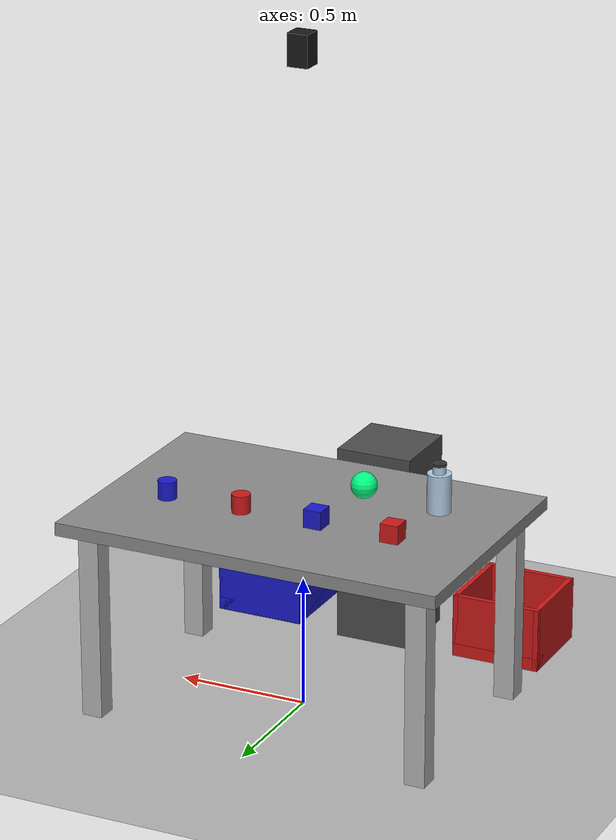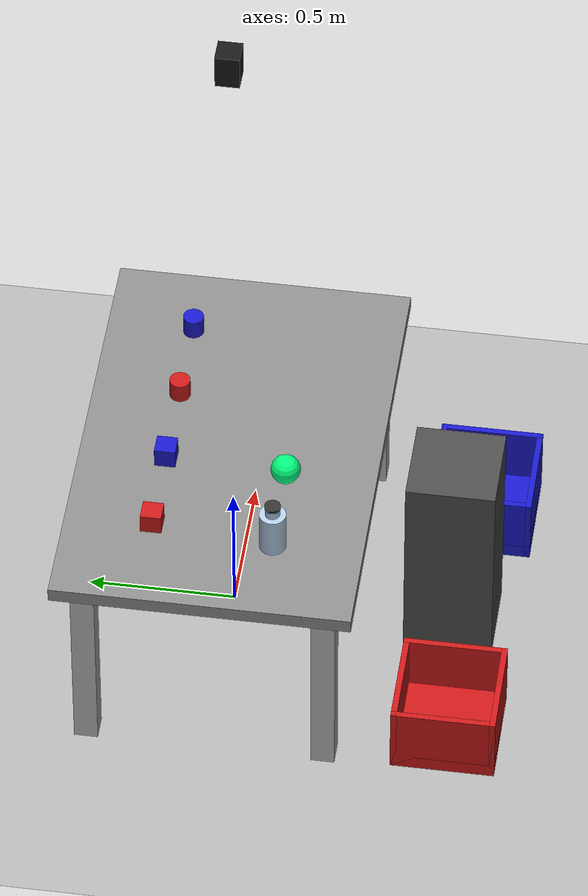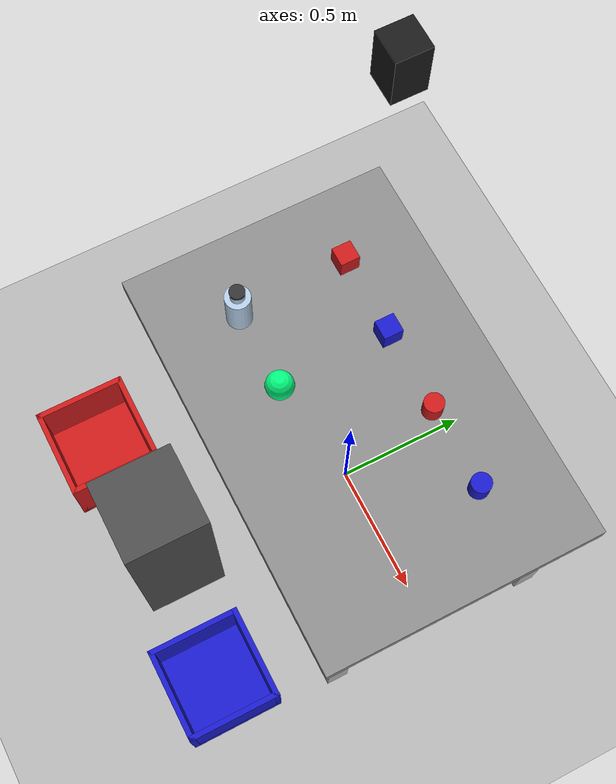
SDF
<?xml version="1.0" ?>
<sdf version="1.10">

  <world name="sorting_world">

    <!-- Physics -->
    <physics name="1ms" type="ignored">
      <max_step_size>0.001</max_step_size>
      <real_time_factor>1.0</real_time_factor>
    </physics>

    <!-- Gazebo system plugins -->
    <plugin
      filename="gz-sim-physics-system"
      name="gz::sim::systems::Physics">
    </plugin>

    <plugin
      filename="gz-sim-user-commands-system"
      name="gz::sim::systems::UserCommands">
    </plugin>

    <plugin
      filename="gz-sim-scene-broadcaster-system"
      name="gz::sim::systems::SceneBroadcaster">
    </plugin>

    <plugin
      filename="gz-sim-contact-system"
      name="gz::sim::systems::Contact">
    </plugin>

    <plugin
        filename="gz-sim-sensors-system"
        name="gz::sim::systems::Sensors">
        <render_engine>ogre2</render_engine>
    </plugin>

    <!-- Lighting -->
    <light type="directional" name="sun">
      <cast_shadows>true</cast_shadows>

      <pose>0 0 10 0 0 0</pose>

      <diffuse>0.8 0.8 0.8 1</diffuse>
      <specular>0.2 0.2 0.2 1</specular>

      <direction>-0.5 0.1 -0.9</direction>
    </light>

    <!-- Ground -->
    <model name="ground_plane">

      <static>true</static>

      <link name="ground_link">

        <collision name="ground_collision">
          <geometry>
            <plane>
              <normal>0 0 1</normal>
              <size>10 10</size>
            </plane>
          </geometry>
        </collision>

        <visual name="ground_visual">
          <geometry>
            <plane>
              <normal>0 0 1</normal>
              <size>10 10</size>
            </plane>
          </geometry>

          <material>
            <ambient>0.7 0.7 0.7 1</ambient>
            <diffuse>0.7 0.7 0.7 1</diffuse>
          </material>
        </visual>

      </link>
    </model>

    <!-- Sorting table -->
    <model name="sorting_table">

        <!-- Center of the table -->
        <pose>0 0 0 0 0 0</pose>

        <static>true</static>

        <link name="table_link">

            <!-- Table top -->
            <collision name="tabletop_collision">
            <pose>0 0 0.75 0 0 0</pose>
            <geometry>
                <box>
                <size>1.5 1.0 0.05</size>
                </box>
            </geometry>
            </collision>

            <visual name="tabletop_visual">
            <pose>0 0 0.75 0 0 0</pose>
            <geometry>
                <box>
                <size>1.5 1.0 0.05</size>
                </box>
            </geometry>

            <material>
                <ambient>0.55 0.55 0.55 1</ambient>
                <diffuse>0.55 0.55 0.55 1</diffuse>
            </material>
            </visual>

            <!-- Four legs -->
            <collision name="leg1_collision">
            <pose>0.65 0.40 0.375 0 0 0</pose>
            <geometry>
                <box>
                <size>0.08 0.08 0.75</size>
                </box>
            </geometry>
            </collision>

            <visual name="leg1_visual">
            <pose>0.65 0.40 0.375 0 0 0</pose>
            <geometry>
                <box>
                <size>0.08 0.08 0.75</size>
                </box>
            </geometry>
            </visual>

            <collision name="leg2_collision">
            <pose>0.65 -0.40 0.375 0 0 0</pose>
            <geometry>
                <box>
                <size>0.08 0.08 0.75</size>
                </box>
            </geometry>
            </collision>

            <visual name="leg2_visual">
            <pose>0.65 -0.40 0.375 0 0 0</pose>
            <geometry>
                <box>
                <size>0.08 0.08 0.75</size>
                </box>
            </geometry>
            </visual>

            <collision name="leg3_collision">
            <pose>-0.65 0.40 0.375 0 0 0</pose>
            <geometry>
                <box>
                <size>0.08 0.08 0.75</size>
                </box>
            </geometry>
            </collision>

            <visual name="leg3_visual">
            <pose>-0.65 0.40 0.375 0 0 0</pose>
            <geometry>
                <box>
                <size>0.08 0.08 0.75</size>
                </box>
            </geometry>
            </visual>

            <collision name="leg4_collision">
            <pose>-0.65 -0.40 0.375 0 0 0</pose>
            <geometry>
                <box>
                <size>0.08 0.08 0.75</size>
                </box>
            </geometry>
            </collision>

            <visual name="leg4_visual">
            <pose>-0.65 -0.40 0.375 0 0 0</pose>
            <geometry>
                <box>
                <size>0.08 0.08 0.75</size>
                </box>
            </geometry>
            </visual>

        </link>
    </model>

    <!-- Robot pedestal: UR10e base sits on top, between the bins and the table.
         Keep in sync with mount_* in urdf/sorting_cell.urdf.xacro. -->
    <model name="robot_pedestal">
        <static>true</static>
        <pose>0 -0.75 0.3875 0 0 0</pose>
        <link name="pedestal_link">
            <collision name="pedestal_collision">
            <geometry>
                <box>
                <size>0.3 0.3 0.775</size>
                </box>
            </geometry>
            </collision>
            <visual name="pedestal_visual">
            <geometry>
                <box>
                <size>0.3 0.3 0.775</size>
                </box>
            </geometry>
            <material>
                <ambient>0.3 0.3 0.3 1</ambient>
                <diffuse>0.3 0.3 0.3 1</diffuse>
            </material>
            </visual>
        </link>
    </model>

    <!-- Red sorting bin -->
    <include>
        <uri>model://red_bin</uri>
        <name>red_bin</name>
        <pose>-0.5 -0.8 0 0 0 0</pose>
    </include>

    <!-- Blue sorting bin -->
    <include>
        <uri>model://blue_bin</uri>
        <name>blue_bin</name>
        <pose>0.5 -0.8 0 0 0 0</pose>
    </include>

    <!-- Sorting objects -->
    <include>
        <uri>model://red_cube</uri>
        <name>red_cube_1</name>
        <pose>-0.45 0.20 0.85 0 0 0</pose>
    </include>

    <include>
        <uri>model://blue_cube</uri>
        <name>blue_cube_1</name>
        <pose>-0.15 0.20 0.85 0 0 0</pose>
    </include>

    <include>
        <uri>model://red_cylinder</uri>
        <name>red_cylinder_1</name>
        <pose>0.15 0.20 0.85 0 0 0</pose>
    </include>

    <include>
        <uri>model://blue_cylinder</uri>
        <name>blue_cylinder_1</name>
        <pose>0.45 0.20 0.85 0 0 0</pose>
    </include>

    <!-- Obstacles -->
    <include>
        <uri>model://obstacle_bottle</uri>
        <name>obstacle_bottle_1</name>
        <pose>-0.45 -0.20 0.775 0 0 0</pose>
    </include>

    <include>
        <uri>model://obstacle_ball</uri>
        <name>obstacle_ball_1</name>
        <pose>-0.15 -0.20 0.775 0 0 0</pose>
    </include>

    <!-- Fixed overhead RGB camera -->
    <model name="sorting_camera">

        <static>true</static>

        <!--
            Camera position:
            x = 0
            y = 0
            z = 2.5 m
            Pitch = +90 degrees so the camera looks downward.
        -->
        <pose>0 0 2.5 0 1.5708 1.5708</pose>

        <link name="camera_link">

            <!-- Small visual body so we can see where the camera is -->
            <visual name="camera_body">
            <geometry>
                <box>
                <size>0.12 0.08 0.08</size>
                </box>
            </geometry>

            <material>
                <ambient>0.1 0.1 0.1 1</ambient>
                <diffuse>0.1 0.1 0.1 1</diffuse>
            </material>
            </visual>

            <!-- Actual RGB camera sensor -->
            <sensor name="rgb_camera" type="camera">

                <always_on>true</always_on>
                <update_rate>30</update_rate>

                <topic>/sorting_camera/image</topic>

                <camera>

                    <horizontal_fov>1.047</horizontal_fov>

                    <image>
                        <width>640</width>
                        <height>480</height>
                        <format>R8G8B8</format>
                    </image>

                    <clip>
                        <near>0.1</near>
                        <far>100</far>
                    </clip>

                </camera>

            </sensor>

        </link>

    </model>

  </world>

</sdf>

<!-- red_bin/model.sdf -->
<sdf version="1.10">

  <model name="red_bin">

    <static>true</static>

    <link name="bin_link">

      <!-- Bottom -->
      <collision name="bottom_collision">
        <pose>0 0 0.025 0 0 0</pose>
        <geometry>
          <box>
            <size>0.35 0.35 0.05</size>
          </box>
        </geometry>
      </collision>

      <visual name="bottom_visual">
        <pose>0 0 0.025 0 0 0</pose>
        <geometry>
          <box>
            <size>0.35 0.35 0.05</size>
          </box>
        </geometry>

        <material>
          <ambient>0.8 0.1 0.1 1</ambient>
          <diffuse>0.8 0.1 0.1 1</diffuse>
        </material>
      </visual>

      <!-- Left wall -->
      <collision name="left_wall_collision">
        <pose>0 0.165 0.125 0 0 0</pose>
        <geometry>
          <box>
            <size>0.35 0.02 0.25</size>
          </box>
        </geometry>
      </collision>

      <visual name="left_wall_visual">
        <pose>0 0.165 0.125 0 0 0</pose>
        <geometry>
          <box>
            <size>0.35 0.02 0.25</size>
          </box>
        </geometry>

        <material>
          <ambient>0.8 0.1 0.1 1</ambient>
          <diffuse>0.8 0.1 0.1 1</diffuse>
        </material>
      </visual>

      <!-- Right wall -->
      <collision name="right_wall_collision">
        <pose>0 -0.165 0.125 0 0 0</pose>
        <geometry>
          <box>
            <size>0.35 0.02 0.25</size>
          </box>
        </geometry>
      </collision>

      <visual name="right_wall_visual">
        <pose>0 -0.165 0.125 0 0 0</pose>
        <geometry>
          <box>
            <size>0.35 0.02 0.25</size>
          </box>
        </geometry>

        <material>
          <ambient>0.8 0.1 0.1 1</ambient>
          <diffuse>0.8 0.1 0.1 1</diffuse>
        </material>
      </visual>

      <!-- Front wall -->
      <collision name="front_wall_collision">
        <pose>0.165 0 0.125 0 0 0</pose>
        <geometry>
          <box>
            <size>0.02 0.35 0.25</size>
          </box>
        </geometry>
      </collision>

      <visual name="front_wall_visual">
        <pose>0.165 0 0.125 0 0 0</pose>
        <geometry>
          <box>
            <size>0.02 0.35 0.25</size>
          </box>
        </geometry>

        <material>
          <ambient>0.8 0.1 0.1 1</ambient>
          <diffuse>0.8 0.1 0.1 1</diffuse>
        </material>
      </visual>

      <!-- Back wall -->
      <collision name="back_wall_collision">
        <pose>-0.165 0 0.125 0 0 0</pose>
        <geometry>
          <box>
            <size>0.02 0.35 0.25</size>
          </box>
        </geometry>
      </collision>

      <visual name="back_wall_visual">
        <pose>-0.165 0 0.125 0 0 0</pose>
        <geometry>
          <box>
            <size>0.02 0.35 0.25</size>
          </box>
        </geometry>

        <material>
          <ambient>0.8 0.1 0.1 1</ambient>
          <diffuse>0.8 0.1 0.1 1</diffuse>
        </material>
      </visual>

    </link>

  </model>

</sdf>

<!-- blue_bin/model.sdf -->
<sdf version="1.10">

  <model name="blue_bin">

    <static>true</static>

    <link name="bin_link">

      <!-- Bottom -->
      <collision name="bottom_collision">
        <pose>0 0 0.025 0 0 0</pose>
        <geometry>
          <box>
            <size>0.35 0.35 0.05</size>
          </box>
        </geometry>
      </collision>

      <visual name="bottom_visual">
        <pose>0 0 0.025 0 0 0</pose>
        <geometry>
          <box>
            <size>0.35 0.35 0.05</size>
          </box>
        </geometry>

        <material>
          <ambient>0.1 0.1 0.8 1</ambient>
          <diffuse>0.1 0.1 0.8 1</diffuse>
        </material>
      </visual>

      <!-- Left wall -->
      <collision name="left_wall_collision">
        <pose>0 0.165 0.125 0 0 0</pose>
        <geometry>
          <box>
            <size>0.35 0.02 0.25</size>
          </box>
        </geometry>
      </collision>

      <visual name="left_wall_visual">
        <pose>0 0.165 0.125 0 0 0</pose>
        <geometry>
          <box>
            <size>0.35 0.02 0.25</size>
          </box>
        </geometry>

        <material>
          <ambient>0.1 0.1 0.8 1</ambient>
          <diffuse>0.1 0.1 0.8 1</diffuse>
        </material>
      </visual>

      <!-- Right wall -->
      <collision name="right_wall_collision">
        <pose>0 -0.165 0.125 0 0 0</pose>
        <geometry>
          <box>
            <size>0.35 0.02 0.25</size>
          </box>
        </geometry>
      </collision>

      <visual name="right_wall_visual">
        <pose>0 -0.165 0.125 0 0 0</pose>
        <geometry>
          <box>
            <size>0.35 0.02 0.25</size>
          </box>
        </geometry>

        <material>
          <ambient>0.1 0.1 0.8 1</ambient>
          <diffuse>0.1 0.1 0.8 1</diffuse>
        </material>
      </visual>

      <!-- Front wall -->
      <collision name="front_wall_collision">
        <pose>0.165 0 0.125 0 0 0</pose>
        <geometry>
          <box>
            <size>0.02 0.35 0.25</size>
          </box>
        </geometry>
      </collision>

      <visual name="front_wall_visual">
        <pose>0.165 0 0.125 0 0 0</pose>
        <geometry>
          <box>
            <size>0.02 0.35 0.25</size>
          </box>
        </geometry>

        <material>
          <ambient>0.1 0.1 0.8 1</ambient>
          <diffuse>0.1 0.1 0.8 1</diffuse>
        </material>
      </visual>

      <!-- Back wall -->
      <collision name="back_wall_collision">
        <pose>-0.165 0 0.125 0 0 0</pose>
        <geometry>
          <box>
            <size>0.02 0.35 0.25</size>
          </box>
        </geometry>
      </collision>

      <visual name="back_wall_visual">
        <pose>-0.165 0 0.125 0 0 0</pose>
        <geometry>
          <box>
            <size>0.02 0.35 0.25</size>
          </box>
        </geometry>

        <material>
          <ambient>0.1 0.1 0.8 1</ambient>
          <diffuse>0.1 0.1 0.8 1</diffuse>
        </material>
      </visual>

    </link>

  </model>

</sdf>

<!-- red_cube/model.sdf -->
<sdf version="1.10">

  <model name="red_cube">

    <link name="cube_link">

      <!-- Physical properties. 0.07 m wide to fit the AG-95's 95 mm max opening. -->
      <inertial>
        <mass>0.1</mass>
        <inertia>
          <ixx>0.0000817</ixx>
          <iyy>0.0000817</iyy>
          <izz>0.0000817</izz>
        </inertia>
      </inertial>

      <!-- Collision geometry -->
      <collision name="cube_collision">
        <geometry>
          <box>
            <size>0.07 0.07 0.07</size>
          </box>
        </geometry>
      </collision>

      <!-- Visible geometry -->
      <visual name="cube_visual">
        <geometry>
          <box>
            <size>0.07 0.07 0.07</size>
          </box>
        </geometry>

        <material>
          <ambient>0.8 0.1 0.1 1</ambient>
          <diffuse>0.8 0.1 0.1 1</diffuse>
        </material>
      </visual>

    </link>

  </model>

</sdf>

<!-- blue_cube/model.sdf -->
<sdf version="1.10">

  <model name="blue_cube">

    <link name="cube_link">

      <!-- Physical properties. 0.07 m wide to fit the AG-95's 95 mm max opening. -->
      <inertial>
        <mass>0.1</mass>
        <inertia>
          <ixx>0.0000817</ixx>
          <iyy>0.0000817</iyy>
          <izz>0.0000817</izz>
        </inertia>
      </inertial>

      <!-- Collision geometry -->
      <collision name="cube_collision">
        <geometry>
          <box>
            <size>0.07 0.07 0.07</size>
          </box>
        </geometry>
      </collision>

      <!-- Visible geometry -->
      <visual name="cube_visual">
        <geometry>
          <box>
            <size>0.07 0.07 0.07</size>
          </box>
        </geometry>

        <material>
          <ambient>0.1 0.1 0.8 1</ambient>
          <diffuse>0.1 0.1 0.8 1</diffuse>
        </material>
      </visual>

    </link>

  </model>

</sdf>

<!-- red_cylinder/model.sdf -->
<sdf version="1.10">

  <model name="red_cylinder">

    <link name="cylinder_link">

      <!-- Physical properties. 0.07 m diameter to fit the AG-95's 95 mm max opening. -->
      <inertial>
        <mass>0.1</mass>
        <inertia>
          <ixx>0.000114</ixx>
          <iyy>0.000114</iyy>
          <izz>0.0000613</izz>
        </inertia>
      </inertial>

      <!-- Collision geometry -->
      <collision name="cylinder_collision">
        <geometry>
          <cylinder>
            <radius>0.035</radius>
            <length>0.07</length>
          </cylinder>
        </geometry>
      </collision>

      <!-- Visible geometry -->
      <visual name="cylinder_visual">
        <geometry>
          <cylinder>
            <radius>0.035</radius>
            <length>0.07</length>
          </cylinder>
        </geometry>

        <material>
          <ambient>0.8 0.1 0.1 1</ambient>
          <diffuse>0.8 0.1 0.1 1</diffuse>
        </material>
      </visual>

    </link>

  </model>

</sdf>

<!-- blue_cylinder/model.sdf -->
<sdf version="1.10">

  <model name="blue_cylinder">

    <link name="cylinder_link">

      <!-- Physical properties. 0.07 m diameter to fit the AG-95's 95 mm max opening. -->
      <inertial>
        <mass>0.1</mass>
        <inertia>
          <ixx>0.000114</ixx>
          <iyy>0.000114</iyy>
          <izz>0.0000613</izz>
        </inertia>
      </inertial>

      <!-- Collision geometry -->
      <collision name="cylinder_collision">
        <geometry>
          <cylinder>
            <radius>0.035</radius>
            <length>0.07</length>
          </cylinder>
        </geometry>
      </collision>

      <!-- Visible geometry -->
      <visual name="cylinder_visual">
        <geometry>
          <cylinder>
            <radius>0.035</radius>
            <length>0.07</length>
          </cylinder>
        </geometry>

        <material>
          <ambient>0.1 0.1 0.8 1</ambient>
          <diffuse>0.1 0.1 0.8 1</diffuse>
        </material>
      </visual>

    </link>

  </model>

</sdf>

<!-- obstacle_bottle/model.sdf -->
<sdf version="1.10">

  <model name="obstacle_bottle">

    <static>true</static>

    <link name="link">

      <!-- Bottle body -->
      <visual name="body_visual">
        <pose>0 0 0.075 0 0 0</pose>

        <geometry>
          <cylinder>
            <radius>0.045</radius>
            <length>0.15</length>
          </cylinder>
        </geometry>

        <material>
          <ambient>0.7 0.8 0.9 1</ambient>
          <diffuse>0.7 0.8 0.9 1</diffuse>
        </material>
      </visual>

      <!-- Bottle neck -->
      <visual name="neck_visual">
        <pose>0 0 0.165 0 0 0</pose>

        <geometry>
          <cylinder>
            <radius>0.025</radius>
            <length>0.03</length>
          </cylinder>
        </geometry>

        <material>
          <ambient>0.7 0.8 0.9 1</ambient>
          <diffuse>0.7 0.8 0.9 1</diffuse>
        </material>
      </visual>

      <!-- Bottle cap -->
      <visual name="cap_visual">
        <pose>0 0 0.185 0 0 0</pose>

        <geometry>
          <cylinder>
            <radius>0.027</radius>
            <length>0.01</length>
          </cylinder>
        </geometry>

        <material>
          <ambient>0.2 0.2 0.2 1</ambient>
          <diffuse>0.2 0.2 0.2 1</diffuse>
        </material>
      </visual>

      <!-- Simple collision geometry -->
      <collision name="collision">

        <pose>0 0 0.075 0 0 0</pose>

        <geometry>
          <cylinder>
            <radius>0.045</radius>
            <length>0.15</length>
          </cylinder>
        </geometry>

      </collision>

    </link>

  </model>

</sdf>

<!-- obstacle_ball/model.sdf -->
<sdf version="1.10">

  <model name="obstacle_ball">

    <static>true</static>

    <link name="link">

      <!-- Ball body -->
      <visual name="base_visual">
        <pose>0 0 0.05 0 0 0</pose>

        <geometry>
          <sphere>
            <radius>0.05</radius>
          </sphere>
        </geometry>

        <material>
          <ambient>0.0 1.0 0.50 1</ambient>
          <diffuse>0.0 1.0 0.50 1</diffuse>
        </material>
      </visual>

      <!-- Simple collision geometry -->
      <collision name="collision">

        <pose>0 0 0.05 0 0 0</pose>

        <geometry>
          <sphere>
            <radius>0.05</radius>
          </sphere>
        </geometry>

      </collision>

    </link>

  </model>

</sdf>
